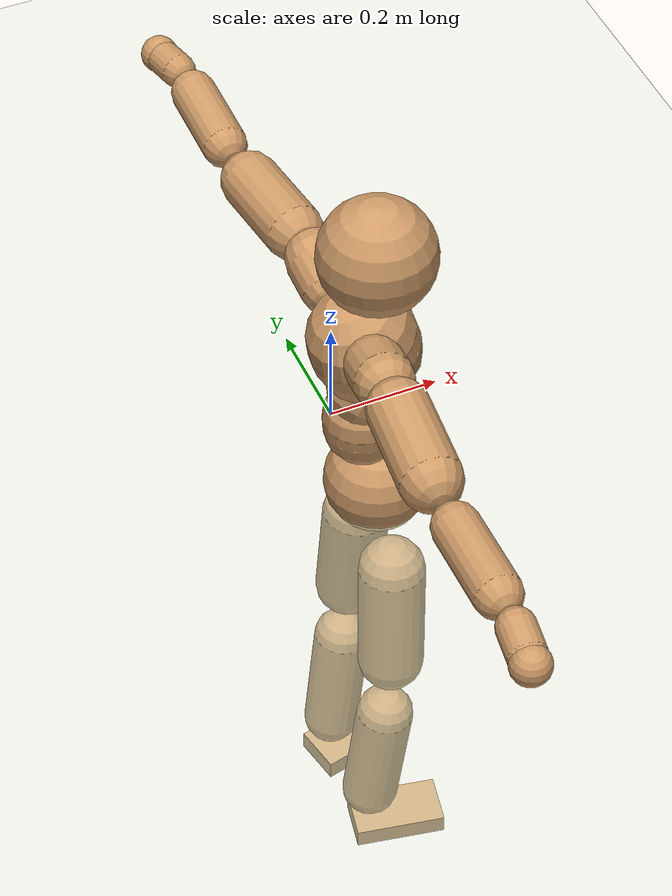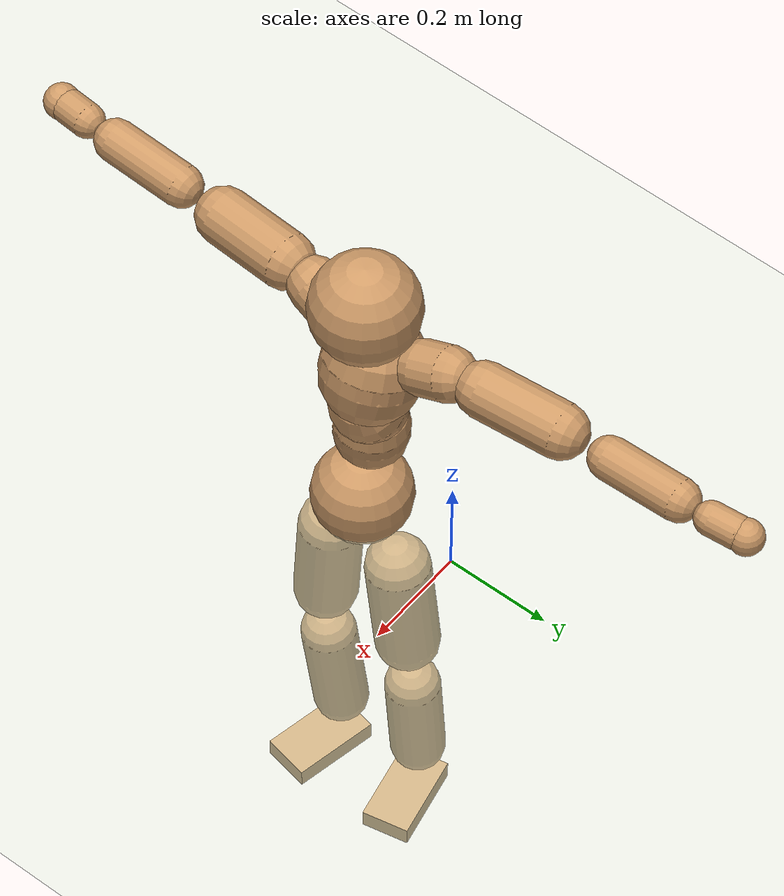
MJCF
<mujoco model="humanoid">
  <compiler coordinate="local"/>
  <default>
    <joint damping="0.0" armature="0.01" stiffness="0.0" limited="true"/>
    <geom conaffinity="1" condim="3" contype="7" margin="0.001" rgba="0.8 0.6 .4 1"/>
  </default>
  <asset>
    <texture type="skybox" builtin="gradient" rgb1=".4 .5 .6" rgb2="0 0 0" width="100" height="100"/>
    <texture builtin="flat" height="1278" mark="cross" markrgb="1 1 1" name="texgeom" random="0.01" rgb1="0.8 0.6 0.4" rgb2="0.8 0.6 0.4" type="cube" width="127"/>
    <texture builtin="checker" height="100" name="texplane" rgb1="0 0 0" rgb2="0.8 0.8 0.8" type="2d" width="100"/>
    <material name="MatPlane" reflectance="0.5" shininess="1" specular="1" texrepeat="60 60" texture="texplane"/>
    <material name="geom" texture="texgeom" texuniform="true"/>
  </asset>
  <worldbody>
    <light cutoff="100" diffuse="1 1 1" dir="-0 0 -1.3" directional="true" exponent="1" pos="0 0 1.3" specular=".1 .1 .1"/>
    <geom conaffinity="1" condim="3" name="floor" pos="0 0 0" rgba="0.8 0.9 0.8 1" size="100 100 .2" type="plane" material="MatPlane"/>
    <body name="Pelvis" pos="0.0002 -0.1946 0.0345">
      <freejoint name="Pelvis"/>
      <geom type="sphere" contype="1" conaffinity="1" density="500" size="0.0915" pos="0.0000 0.0000 0.0000" name="Pelvis"/>
      <body name="L_Hip" pos="-0.0021 0.0679 -0.0857">
        <joint name="L_Hip_x" type="hinge" pos="0 0 0" axis="1 0 0" stiffness="800" damping="80" armature="0.02" range="-180.0000 180.0000"/>
        <joint name="L_Hip_y" type="hinge" pos="0 0 0" axis="0 1 0" stiffness="800" damping="80" armature="0.02" range="-180.0000 180.0000"/>
        <joint name="L_Hip_z" type="hinge" pos="0 0 0" axis="0 0 1" stiffness="800" damping="80" armature="0.02" range="-180.0000 180.0000"/>
        <geom type="capsule" contype="1" conaffinity="1" density="500" fromto="-0.0021 0.0058 -0.0710 -0.0084 0.0231 -0.2841" size="0.0589" name="L_Hip"/>
        <body name="L_Knee" pos="-0.0106 0.0289 -0.3552">
          <joint name="L_Knee_x" type="hinge" pos="0 0 0" axis="1 0 0" stiffness="800" damping="80" armature="0.02" range="-180.0000 180.0000"/>
          <joint name="L_Knee_y" type="hinge" pos="0 0 0" axis="0 1 0" stiffness="800" damping="80" armature="0.02" range="-180.0000 180.0000"/>
          <joint name="L_Knee_z" type="hinge" pos="0 0 0" axis="0 0 1" stiffness="800" damping="80" armature="0.02" range="-180.0000 180.0000"/>
          <geom type="capsule" contype="1" conaffinity="1" density="500" fromto="-0.0079 -0.0021 -0.0750 -0.0317 -0.0082 -0.3000" size="0.0505" name="L_Knee"/>
          <body name="L_Ankle" pos="-0.0397 -0.0103 -0.375">
            <joint name="L_Ankle_x" type="hinge" pos="0 0 0" axis="1 0 0" stiffness="800" damping="80" armature="0.02" range="-180.0000 180.0000"/>
            <joint name="L_Ankle_y" type="hinge" pos="0 0 0" axis="0 1 0" stiffness="800" damping="80" armature="0.02" range="-180.0000 180.0000"/>
            <joint name="L_Ankle_z" type="hinge" pos="0 0 0" axis="0 0 1" stiffness="800" damping="80" armature="0.02" range="-180.0000 180.0000"/>
            <geom type="box" contype="1" conaffinity="1" density="500" pos="0.0562 0.0119 -0.0271" size="0.0821 0.045 0.0194" quat="0.9945 0.0000 0.0000 0.1043" name="L_Ankle"/>
            <body name="L_Toe" pos="0.1125 0.0239 -0.0542">
              <joint name="L_Toe_x" type="hinge" pos="0 0 0" axis="1 0 0" stiffness="500" damping="50" armature="0.02" range="-180.0000 180.0000"/>
              <joint name="L_Toe_y" type="hinge" pos="0 0 0" axis="0 1 0" stiffness="500" damping="50" armature="0.02" range="-180.0000 180.0000"/>
              <joint name="L_Toe_z" type="hinge" pos="0 0 0" axis="0 0 1" stiffness="500" damping="50" armature="0.02" range="-180.0000 180.0000"/>
              <geom type="box" contype="1" conaffinity="1" density="500" pos="0.0000 0.0000 0.0268" size="0.0009 0.0023 0.001" quat="0.9938 0.0000 0.0000 0.1109" name="L_Toe"/>
            </body>
          </body>
        </body>
      </body>
      <body name="R_Hip" pos="0.0003 -0.0661 -0.0855">
        <joint name="R_Hip_x" type="hinge" pos="0 0 0" axis="1 0 0" stiffness="800" damping="80" armature="0.02" range="-180.0000 180.0000"/>
        <joint name="R_Hip_y" type="hinge" pos="0 0 0" axis="0 1 0" stiffness="800" damping="80" armature="0.02" range="-180.0000 180.0000"/>
        <joint name="R_Hip_z" type="hinge" pos="0 0 0" axis="0 0 1" stiffness="800" damping="80" armature="0.02" range="-180.0000 180.0000"/>
        <geom type="capsule" contype="1" conaffinity="1" density="500" fromto="-0.0024 -0.0066 -0.0720 -0.0097 -0.0265 -0.2880" size="0.0583" name="R_Hip"/>
        <body name="R_Knee" pos="-0.0121 -0.0331 -0.36">
          <joint name="R_Knee_x" type="hinge" pos="0 0 0" axis="1 0 0" stiffness="800" damping="80" armature="0.02" range="-180.0000 180.0000"/>
          <joint name="R_Knee_y" type="hinge" pos="0 0 0" axis="0 1 0" stiffness="800" damping="80" armature="0.02" range="-180.0000 180.0000"/>
          <joint name="R_Knee_z" type="hinge" pos="0 0 0" axis="0 0 1" stiffness="800" damping="80" armature="0.02" range="-180.0000 180.0000"/>
          <geom type="capsule" contype="1" conaffinity="1" density="500" fromto="-0.0078 0.0026 -0.0752 -0.0314 0.0102 -0.3008" size="0.0508" name="R_Knee"/>
          <body name="R_Ankle" pos="-0.0392 0.0128 -0.376">
            <joint name="R_Ankle_x" type="hinge" pos="0 0 0" axis="1 0 0" stiffness="800" damping="80" armature="0.02" range="-180.0000 180.0000"/>
            <joint name="R_Ankle_y" type="hinge" pos="0 0 0" axis="0 1 0" stiffness="800" damping="80" armature="0.02" range="-180.0000 180.0000"/>
            <joint name="R_Ankle_z" type="hinge" pos="0 0 0" axis="0 0 1" stiffness="800" damping="80" armature="0.02" range="-180.0000 180.0000"/>
            <geom type="box" contype="1" conaffinity="1" density="500" pos="0.0578 -0.0113 -0.0219" size="0.0825 0.0455 0.0193" quat="0.9953 0.0000 0.0000 -0.0966" name="R_Ankle"/>
            <body name="R_Toe" pos="0.1157 -0.0227 -0.0438">
              <joint name="R_Toe_x" type="hinge" pos="0 0 0" axis="1 0 0" stiffness="500" damping="50" armature="0.02" range="-180.0000 180.0000"/>
              <joint name="R_Toe_y" type="hinge" pos="0 0 0" axis="0 1 0" stiffness="500" damping="50" armature="0.02" range="-180.0000 180.0000"/>
              <joint name="R_Toe_z" type="hinge" pos="0 0 0" axis="0 0 1" stiffness="500" damping="50" armature="0.02" range="-180.0000 180.0000"/>
              <geom type="box" contype="1" conaffinity="1" density="500" pos="0.0000 0.0000 0.0238" size="0.0009 0.0023 0.0011" quat="0.9962 0.0000 0.0000 -0.0868" name="R_Toe"/>
            </body>
          </body>
        </body>
      </body>
      <body name="Torso" pos="-0.0265 -0.0026 0.0986">
        <joint name="Torso_x" type="hinge" pos="0 0 0" axis="1 0 0" stiffness="1000" damping="100" armature="0.02" range="-180.0000 180.0000"/>
        <joint name="Torso_y" type="hinge" pos="0 0 0" axis="0 1 0" stiffness="1000" damping="100" armature="0.02" range="-180.0000 180.0000"/>
        <joint name="Torso_z" type="hinge" pos="0 0 0" axis="0 0 1" stiffness="1000" damping="100" armature="0.02" range="-180.0000 180.0000"/>
        <geom type="capsule" contype="1" conaffinity="1" density="500" fromto="-0.0018 0.0015 0.0675 -0.0012 0.0010 0.0450" size="0.067239" name="Torso"/>
        <body name="Spine" pos="-0.0031 0.0026 0.1124">
          <joint name="Spine_x" type="hinge" pos="0 0 0" axis="1 0 0" stiffness="1000" damping="100" armature="0.02" range="-180.0000 180.0000"/>
          <joint name="Spine_y" type="hinge" pos="0 0 0" axis="0 1 0" stiffness="1000" damping="100" armature="0.02" range="-180.0000 180.0000"/>
          <joint name="Spine_z" type="hinge" pos="0 0 0" axis="0 0 1" stiffness="1000" damping="100" armature="0.02" range="-180.0000 180.0000"/>
          <geom type="capsule" contype="1" conaffinity="1" density="500" fromto="0.0160 0.0017 0.0278 0.0106 0.0011 0.0185" size="0.069285" name="Spine"/>
          <body name="Chest" pos="0.0266 0.0028 0.0463">
            <joint name="Chest_x" type="hinge" pos="0 0 0" axis="1 0 0" stiffness="1000" damping="100" armature="0.02" range="-180.0000 180.0000"/>
            <joint name="Chest_y" type="hinge" pos="0 0 0" axis="0 1 0" stiffness="1000" damping="100" armature="0.02" range="-180.0000 180.0000"/>
            <joint name="Chest_z" type="hinge" pos="0 0 0" axis="0 0 1" stiffness="1000" damping="100" armature="0.02" range="-180.0000 180.0000"/>
            <geom type="capsule" contype="1" conaffinity="1" density="500" fromto="-0.0273 -0.0003 0.0858 -0.0182 -0.0002 0.0572" size="0.091047" name="Chest"/>
            <body name="Neck" pos="-0.0508 0.0002 0.1985">
              <joint name="Neck_x" type="hinge" pos="0 0 0" axis="1 0 0" stiffness="500" damping="50" armature="0.02" range="-180.0000 180.0000"/>
              <joint name="Neck_y" type="hinge" pos="0 0 0" axis="0 1 0" stiffness="500" damping="50" armature="0.02" range="-180.0000 180.0000"/>
              <joint name="Neck_z" type="hinge" pos="0 0 0" axis="0 0 1" stiffness="500" damping="50" armature="0.02" range="-180.0000 180.0000"/>
              <geom type="capsule" contype="1" conaffinity="1" density="500" fromto="0.0099 0.0005 0.0109 0.0398 0.0018 0.0434" size="0.038223" name="Neck"/>
              <body name="Head" pos="0.0497 0.0023 0.0543">
                <joint name="Head_x" type="hinge" pos="0 0 0" axis="1 0 0" stiffness="500" damping="50" armature="0.02" range="-180.0000 180.0000"/>
                <joint name="Head_y" type="hinge" pos="0 0 0" axis="0 1 0" stiffness="500" damping="50" armature="0.02" range="-180.0000 180.0000"/>
                <joint name="Head_z" type="hinge" pos="0 0 0" axis="0 0 1" stiffness="500" damping="50" armature="0.02" range="-180.0000 180.0000"/>
                <geom type="sphere" contype="1" conaffinity="1" density="500" size="0.0987" pos="0.0000 0.0000 0.0000" name="Head"/>
              </body>
            </body>
            <body name="L_Thorax" pos="-0.0404 0.0764 0.1165">
              <joint name="L_Thorax_x" type="hinge" pos="0 0 0" axis="1 0 0" stiffness="500" damping="50" armature="0.02" range="-180.0000 180.0000"/>
              <joint name="L_Thorax_y" type="hinge" pos="0 0 0" axis="0 1 0" stiffness="500" damping="50" armature="0.02" range="-180.0000 180.0000"/>
              <joint name="L_Thorax_z" type="hinge" pos="0 0 0" axis="0 0 1" stiffness="500" damping="50" armature="0.02" range="-180.0000 180.0000"/>
              <geom type="capsule" contype="1" conaffinity="1" density="500" fromto="-0.0016 0.0168 0.0063 -0.0065 0.0672 0.0253" size="0.0498" name="L_Thorax"/>
              <body name="L_Shoulder" pos="-0.0081 0.084 0.0316">
                <joint name="L_Shoulder_x" type="hinge" pos="0 0 0" axis="1 0 0" stiffness="500" damping="50" armature="0.02" range="-720.0000 720.0000"/>
                <joint name="L_Shoulder_y" type="hinge" pos="0 0 0" axis="0 1 0" stiffness="500" damping="50" armature="0.02" range="-720.0000 720.0000"/>
                <joint name="L_Shoulder_z" type="hinge" pos="0 0 0" axis="0 0 1" stiffness="500" damping="50" armature="0.02" range="-720.0000 720.0000"/>
                <geom type="capsule" contype="1" conaffinity="1" density="500" fromto="-0.0057 0.0494 -0.0019 -0.0226 0.1976 -0.0075" size="0.0498" name="L_Shoulder"/>
                <body name="L_Elbow" pos="-0.0283 0.247 -0.0094">
                  <joint name="L_Elbow_x" type="hinge" pos="0 0 0" axis="1 0 0" stiffness="500" damping="50" armature="0.02" range="-720.0000 720.0000"/>
                  <joint name="L_Elbow_y" type="hinge" pos="0 0 0" axis="0 1 0" stiffness="500" damping="50" armature="0.02" range="-720.0000 720.0000"/>
                  <joint name="L_Elbow_z" type="hinge" pos="0 0 0" axis="0 0 1" stiffness="500" damping="50" armature="0.02" range="-720.0000 720.0000"/>
                  <geom type="capsule" contype="1" conaffinity="1" density="500" fromto="-0.0001 0.0470 0.0020 -0.0004 0.1881 0.0080" size="0.0386" name="L_Elbow"/>
                  <body name="L_Wrist" pos="-0.0005 0.2351 0.0099">
                    <joint name="L_Wrist_x" type="hinge" pos="0 0 0" axis="1 0 0" stiffness="300" damping="30" armature="0.02" range="-180.0000 180.0000"/>
                    <joint name="L_Wrist_y" type="hinge" pos="0 0 0" axis="0 1 0" stiffness="300" damping="30" armature="0.02" range="-180.0000 180.0000"/>
                    <joint name="L_Wrist_z" type="hinge" pos="0 0 0" axis="0 0 1" stiffness="300" damping="30" armature="0.02" range="-180.0000 180.0000"/>
                    <geom type="capsule" contype="1" conaffinity="1" density="500" fromto="-0.0027 0.0160 -0.0019 -0.0107 0.0638 -0.0076" size="0.0302" name="L_Wrist"/>
                    <body name="L_Hand" pos="-0.0134 0.0798 -0.0095">
                      <joint name="L_Hand_x" type="hinge" pos="0 0 0" axis="1 0 0" stiffness="300" damping="30" armature="0.02" range="-180.0000 180.0000"/>
                      <joint name="L_Hand_y" type="hinge" pos="0 0 0" axis="0 1 0" stiffness="300" damping="30" armature="0.02" range="-180.0000 180.0000"/>
                      <joint name="L_Hand_z" type="hinge" pos="0 0 0" axis="0 0 1" stiffness="300" damping="30" armature="0.02" range="-180.0000 180.0000"/>
                      <geom type="sphere" contype="1" conaffinity="1" density="500" size="0.0322" pos="0.0000 0.0000 0.0000" name="L_Hand"/>
                    </body>
                  </body>
                </body>
              </body>
            </body>
            <body name="R_Thorax" pos="-0.0454 -0.0782 0.1139">
              <joint name="R_Thorax_x" type="hinge" pos="0 0 0" axis="1 0 0" stiffness="500" damping="50" armature="0.02" range="-180.0000 180.0000"/>
              <joint name="R_Thorax_y" type="hinge" pos="0 0 0" axis="0 1 0" stiffness="500" damping="50" armature="0.02" range="-180.0000 180.0000"/>
              <joint name="R_Thorax_z" type="hinge" pos="0 0 0" axis="0 0 1" stiffness="500" damping="50" armature="0.02" range="-180.0000 180.0000"/>
              <geom type="capsule" contype="1" conaffinity="1" density="500" fromto="-0.0025 -0.0179 0.0063 -0.0099 -0.0716 0.0253" size="0.0496" name="R_Thorax"/>
              <body name="R_Shoulder" pos="-0.0123 -0.0896 0.0316">
                <joint name="R_Shoulder_x" type="hinge" pos="0 0 0" axis="1 0 0" stiffness="500" damping="50" armature="0.02" range="-720.0000 720.0000"/>
                <joint name="R_Shoulder_y" type="hinge" pos="0 0 0" axis="0 1 0" stiffness="500" damping="50" armature="0.02" range="-720.0000 720.0000"/>
                <joint name="R_Shoulder_z" type="hinge" pos="0 0 0" axis="0 0 1" stiffness="500" damping="50" armature="0.02" range="-720.0000 720.0000"/>
                <geom type="capsule" contype="1" conaffinity="1" density="500" fromto="-0.0042 -0.0488 -0.0022 -0.0167 -0.1952 -0.0090" size="0.0516" name="R_Shoulder"/>
                <body name="R_Elbow" pos="-0.0209 -0.2439 -0.0112">
                  <joint name="R_Elbow_x" type="hinge" pos="0 0 0" axis="1 0 0" stiffness="500" damping="50" armature="0.02" range="-720.0000 720.0000"/>
                  <joint name="R_Elbow_y" type="hinge" pos="0 0 0" axis="0 1 0" stiffness="500" damping="50" armature="0.02" range="-720.0000 720.0000"/>
                  <joint name="R_Elbow_z" type="hinge" pos="0 0 0" axis="0 0 1" stiffness="500" damping="50" armature="0.02" range="-720.0000 720.0000"/>
                  <geom type="capsule" contype="1" conaffinity="1" density="500" fromto="-0.0006 -0.0489 0.0021 -0.0024 -0.1957 0.0086" size="0.0391" name="R_Elbow"/>
                  <body name="R_Wrist" pos="-0.0031 -0.2447 0.0107">
                    <joint name="R_Wrist_x" type="hinge" pos="0 0 0" axis="1 0 0" stiffness="300" damping="30" armature="0.02" range="-180.0000 180.0000"/>
                    <joint name="R_Wrist_y" type="hinge" pos="0 0 0" axis="0 1 0" stiffness="300" damping="30" armature="0.02" range="-180.0000 180.0000"/>
                    <joint name="R_Wrist_z" type="hinge" pos="0 0 0" axis="0 0 1" stiffness="300" damping="30" armature="0.02" range="-180.0000 180.0000"/>
                    <geom type="capsule" contype="1" conaffinity="1" density="500" fromto="-0.0021 -0.0164 -0.0015 -0.0085 -0.0655 -0.0058" size="0.0315" name="R_Wrist"/>
                    <body name="R_Hand" pos="-0.0107 -0.0818 -0.0073">
                      <joint name="R_Hand_x" type="hinge" pos="0 0 0" axis="1 0 0" stiffness="300" damping="30" armature="0.02" range="-180.0000 180.0000"/>
                      <joint name="R_Hand_y" type="hinge" pos="0 0 0" axis="0 1 0" stiffness="300" damping="30" armature="0.02" range="-180.0000 180.0000"/>
                      <joint name="R_Hand_z" type="hinge" pos="0 0 0" axis="0 0 1" stiffness="300" damping="30" armature="0.02" range="-180.0000 180.0000"/>
                      <geom type="sphere" contype="1" conaffinity="1" density="500" size="0.0330" pos="0.0000 0.0000 0.0000" name="R_Hand"/>
                    </body>
                  </body>
                </body>
              </body>
            </body>
          </body>
        </body>
      </body>
    </body>
  </worldbody>
  <actuator>
    <motor name="L_Hip_x" joint="L_Hip_x" gear="500"/>
    <motor name="L_Hip_y" joint="L_Hip_y" gear="500"/>
    <motor name="L_Hip_z" joint="L_Hip_z" gear="500"/>
    <motor name="L_Knee_x" joint="L_Knee_x" gear="500"/>
    <motor name="L_Knee_y" joint="L_Knee_y" gear="500"/>
    <motor name="L_Knee_z" joint="L_Knee_z" gear="500"/>
    <motor name="L_Ankle_x" joint="L_Ankle_x" gear="500"/>
    <motor name="L_Ankle_y" joint="L_Ankle_y" gear="500"/>
    <motor name="L_Ankle_z" joint="L_Ankle_z" gear="500"/>
    <motor name="L_Toe_x" joint="L_Toe_x" gear="500"/>
    <motor name="L_Toe_y" joint="L_Toe_y" gear="500"/>
    <motor name="L_Toe_z" joint="L_Toe_z" gear="500"/>
    <motor name="R_Hip_x" joint="R_Hip_x" gear="500"/>
    <motor name="R_Hip_y" joint="R_Hip_y" gear="500"/>
    <motor name="R_Hip_z" joint="R_Hip_z" gear="500"/>
    <motor name="R_Knee_x" joint="R_Knee_x" gear="500"/>
    <motor name="R_Knee_y" joint="R_Knee_y" gear="500"/>
    <motor name="R_Knee_z" joint="R_Knee_z" gear="500"/>
    <motor name="R_Ankle_x" joint="R_Ankle_x" gear="500"/>
    <motor name="R_Ankle_y" joint="R_Ankle_y" gear="500"/>
    <motor name="R_Ankle_z" joint="R_Ankle_z" gear="500"/>
    <motor name="R_Toe_x" joint="R_Toe_x" gear="500"/>
    <motor name="R_Toe_y" joint="R_Toe_y" gear="500"/>
    <motor name="R_Toe_z" joint="R_Toe_z" gear="500"/>
    <motor name="Torso_x" joint="Torso_x" gear="500"/>
    <motor name="Torso_y" joint="Torso_y" gear="500"/>
    <motor name="Torso_z" joint="Torso_z" gear="500"/>
    <motor name="Spine_x" joint="Spine_x" gear="500"/>
    <motor name="Spine_y" joint="Spine_y" gear="500"/>
    <motor name="Spine_z" joint="Spine_z" gear="500"/>
    <motor name="Chest_x" joint="Chest_x" gear="500"/>
    <motor name="Chest_y" joint="Chest_y" gear="500"/>
    <motor name="Chest_z" joint="Chest_z" gear="500"/>
    <motor name="Neck_x" joint="Neck_x" gear="500"/>
    <motor name="Neck_y" joint="Neck_y" gear="500"/>
    <motor name="Neck_z" joint="Neck_z" gear="500"/>
    <motor name="Head_x" joint="Head_x" gear="500"/>
    <motor name="Head_y" joint="Head_y" gear="500"/>
    <motor name="Head_z" joint="Head_z" gear="500"/>
    <motor name="L_Thorax_x" joint="L_Thorax_x" gear="500"/>
    <motor name="L_Thorax_y" joint="L_Thorax_y" gear="500"/>
    <motor name="L_Thorax_z" joint="L_Thorax_z" gear="500"/>
    <motor name="L_Shoulder_x" joint="L_Shoulder_x" gear="500"/>
    <motor name="L_Shoulder_y" joint="L_Shoulder_y" gear="500"/>
    <motor name="L_Shoulder_z" joint="L_Shoulder_z" gear="500"/>
    <motor name="L_Elbow_x" joint="L_Elbow_x" gear="500"/>
    <motor name="L_Elbow_y" joint="L_Elbow_y" gear="500"/>
    <motor name="L_Elbow_z" joint="L_Elbow_z" gear="500"/>
    <motor name="L_Wrist_x" joint="L_Wrist_x" gear="500"/>
    <motor name="L_Wrist_y" joint="L_Wrist_y" gear="500"/>
    <motor name="L_Wrist_z" joint="L_Wrist_z" gear="500"/>
    <motor name="L_Hand_x" joint="L_Hand_x" gear="500"/>
    <motor name="L_Hand_y" joint="L_Hand_y" gear="500"/>
    <motor name="L_Hand_z" joint="L_Hand_z" gear="500"/>
    <motor name="R_Thorax_x" joint="R_Thorax_x" gear="500"/>
    <motor name="R_Thorax_y" joint="R_Thorax_y" gear="500"/>
    <motor name="R_Thorax_z" joint="R_Thorax_z" gear="500"/>
    <motor name="R_Shoulder_x" joint="R_Shoulder_x" gear="500"/>
    <motor name="R_Shoulder_y" joint="R_Shoulder_y" gear="500"/>
    <motor name="R_Shoulder_z" joint="R_Shoulder_z" gear="500"/>
    <motor name="R_Elbow_x" joint="R_Elbow_x" gear="500"/>
    <motor name="R_Elbow_y" joint="R_Elbow_y" gear="500"/>
    <motor name="R_Elbow_z" joint="R_Elbow_z" gear="500"/>
    <motor name="R_Wrist_x" joint="R_Wrist_x" gear="500"/>
    <motor name="R_Wrist_y" joint="R_Wrist_y" gear="500"/>
    <motor name="R_Wrist_z" joint="R_Wrist_z" gear="500"/>
    <motor name="R_Hand_x" joint="R_Hand_x" gear="500"/>
    <motor name="R_Hand_y" joint="R_Hand_y" gear="500"/>
    <motor name="R_Hand_z" joint="R_Hand_z" gear="500"/>
  </actuator>
  <contact>
    <exclude body1="Torso" body2="Chest"/>
    <exclude body1="Head" body2="Chest"/>
    <exclude body1="R_Knee" body2="R_Toe"/>
    <exclude body1="R_Knee" body2="L_Ankle"/>
    <exclude body1="R_Knee" body2="L_Toe"/>
    <exclude body1="L_Knee" body2="L_Toe"/>
    <exclude body1="L_Knee" body2="R_Ankle"/>
    <exclude body1="L_Knee" body2="R_Toe"/>
    <exclude body1="L_Shoulder" body2="Chest"/>
    <exclude body1="R_Shoulder" body2="Chest"/>
  </contact>
  <sensor/>
  <size njmax="700" nconmax="700"/>
</mujoco>
